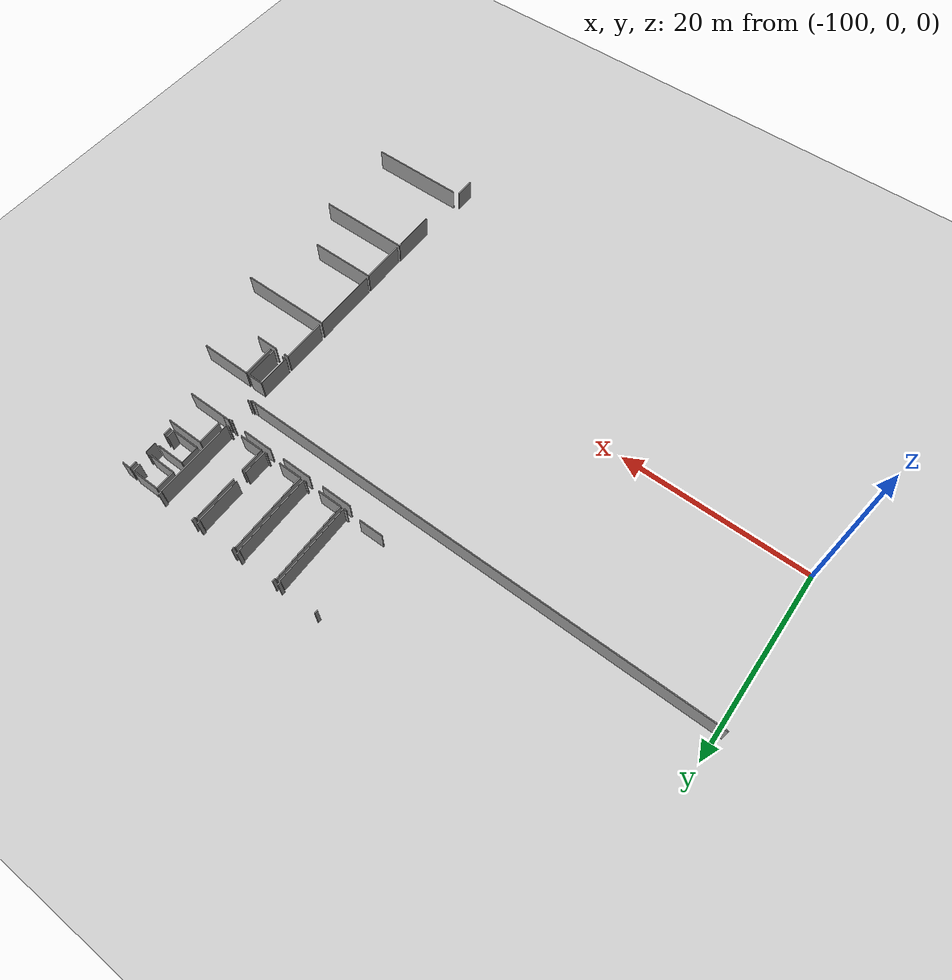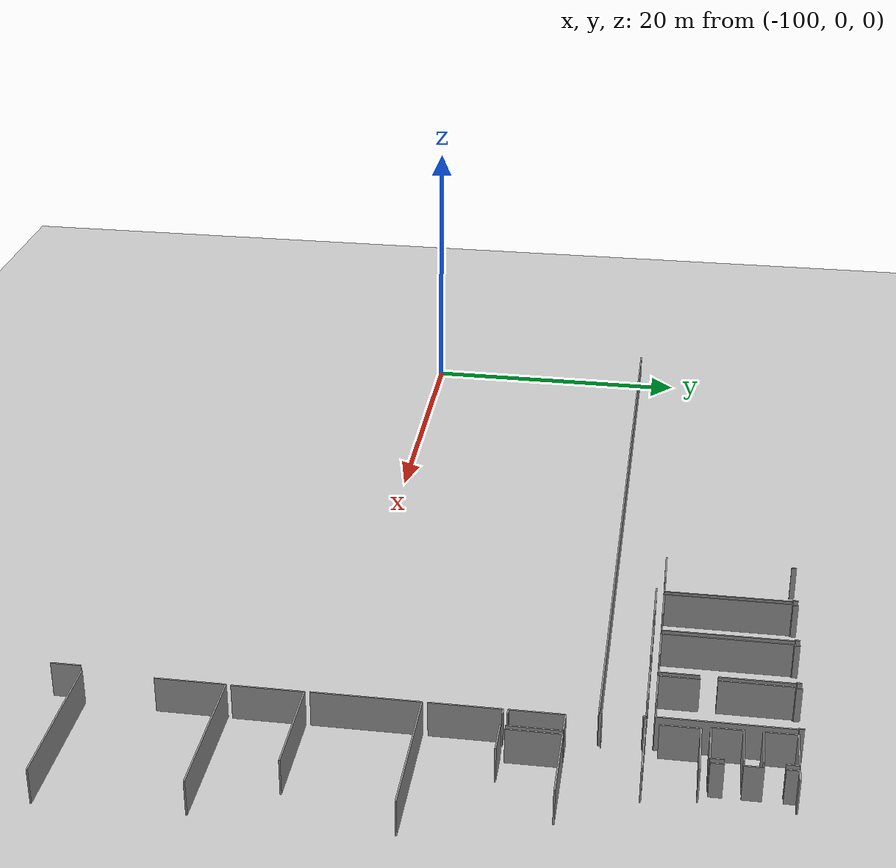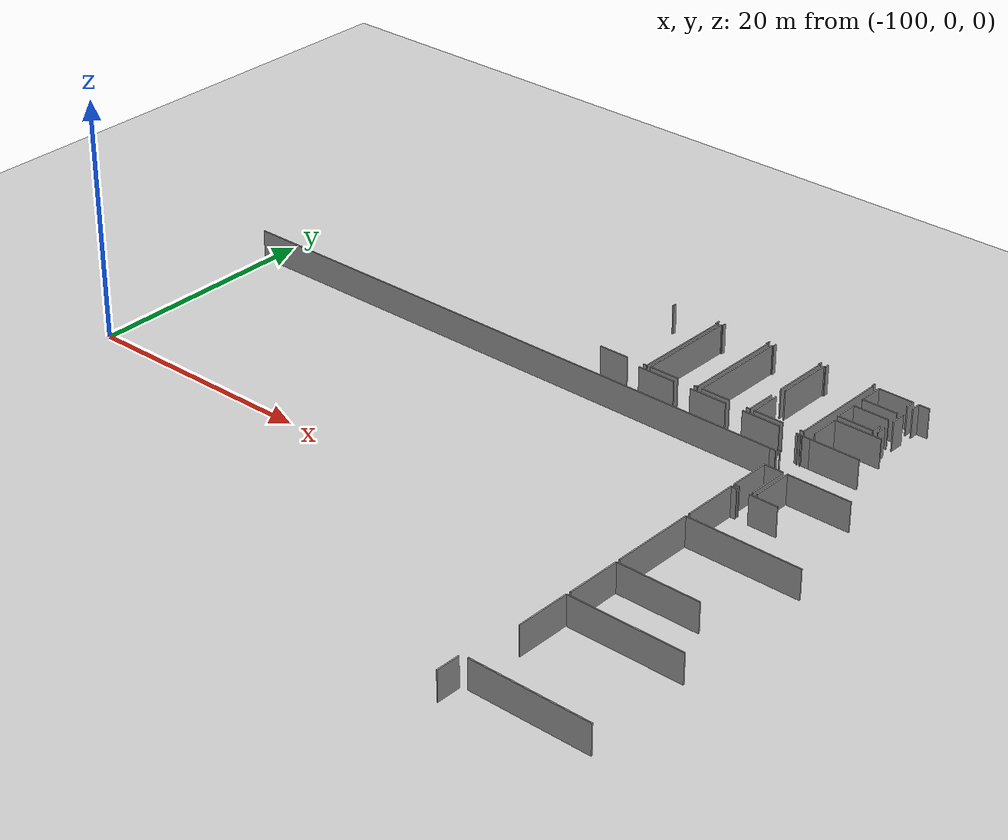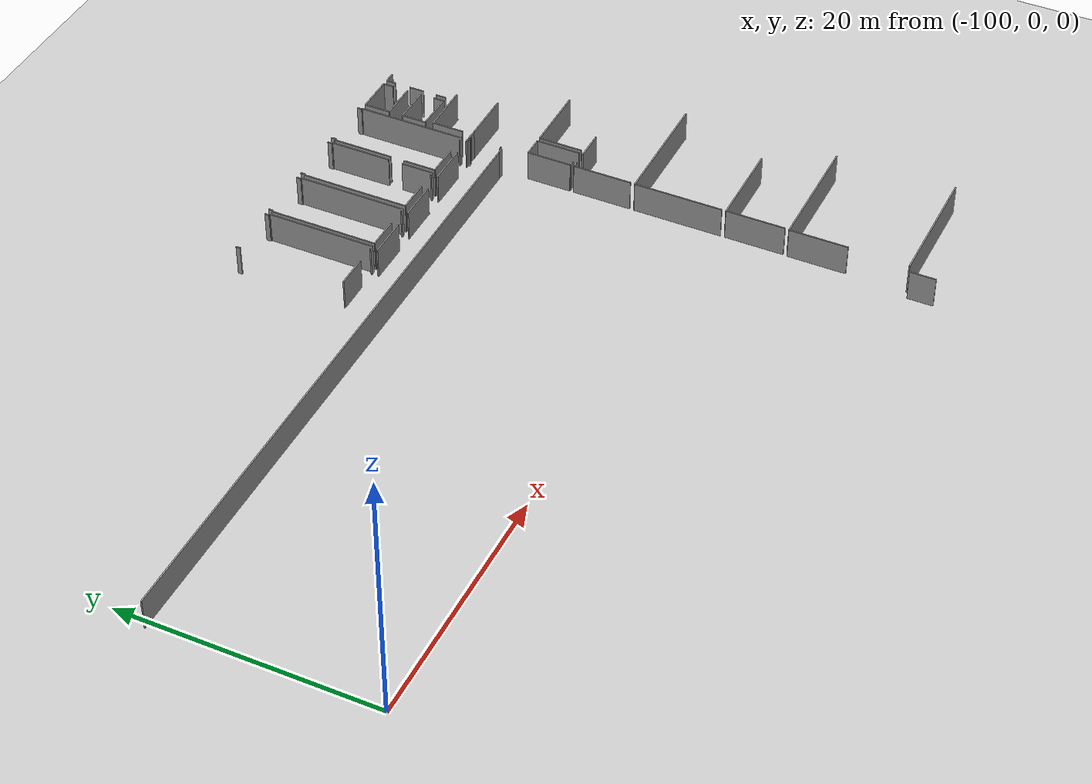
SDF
<sdf version="1.6">
 <world name="default">
  <model name="ground_plane">
   <static>1</static>
   <link name="link">
    <collision name="collision">
     <geometry><plane><normal>0 0 1</normal><size>100 100</size></plane></geometry>
     <surface><friction><ode><mu>100</mu><mu2>50</mu2></ode></friction></surface>
    </collision>
    <visual name="visual">
     <cast_shadows>0</cast_shadows>
     <geometry><plane><normal>0 0 1</normal><size>100 100</size></plane></geometry>
     <material>
      <script><uri>file://media/materials/scripts/gazebo.material</uri><name>Gazebo/Grey</name></script>
     </material>
    </visual>
   </link>
  </model>
  <model name="50010536_PLAN3">
   <static>1</static>
   <link name="Wall_53">
    <collision name="Wall_53_Collision">
     <geometry><box><size>0.346684442751 0.1 2.5</size></box></geometry>
     <pose>0.173342221376 0 1.25 0 0 0</pose>
    </collision>
    <visual name="Wall_53_Visual">
     <pose>0.173342221376 0 1.25 0 0 0</pose>
     <geometry><box><size>0.346684442751 0.1 2.5</size></box></geometry>
     <material>
      <script><uri>file://media/materials/scripts/gazebo.material</uri><name>Gazebo/Grey</name></script>
      <ambient>1 1 1 1</ambient>
     </material>
    </visual>
    <pose>34.9866361934 -0.379697171698 0 0 0 1.57079632679</pose>
   </link>
   <link name="Wall_54">
    <collision name="Wall_54_Collision">
     <geometry><box><size>0.354937624988 0.1 2.5</size></box></geometry>
     <pose>0.177468812494 0 1.25 0 0 0</pose>
    </collision>
    <visual name="Wall_54_Visual">
     <pose>0.177468812494 0 1.25 0 0 0</pose>
     <geometry><box><size>0.354937624988 0.1 2.5</size></box></geometry>
     <material>
      <script><uri>file://media/materials/scripts/gazebo.material</uri><name>Gazebo/Grey</name></script>
      <ambient>1 1 1 1</ambient>
     </material>
    </visual>
    <pose>39.1840777069 -0.0330127289464 0 0 0 -1.57079632679</pose>
   </link>
   <link name="Wall_55">
    <collision name="Wall_55_Collision">
     <geometry><box><size>0.127987810685 0.1 2.5</size></box></geometry>
     <pose>0.0639939053424 0 1.25 0 0 0</pose>
    </collision>
    <visual name="Wall_55_Visual">
     <pose>0.0639939053424 0 1.25 0 0 0</pose>
     <geometry><box><size>0.127987810685 0.1 2.5</size></box></geometry>
     <material>
      <script><uri>file://media/materials/scripts/gazebo.material</uri><name>Gazebo/Grey</name></script>
      <ambient>1 1 1 1</ambient>
     </material>
    </visual>
    <pose>39.1840777069 -0.387950353935 0 0 0 0.0</pose>
   </link>
   <link name="Wall_56">
    <collision name="Wall_56_Collision">
     <geometry><box><size>8.58902326763 0.1 2.5</size></box></geometry>
     <pose>4.29451163381 0 1.25 0 0 0</pose>
    </collision>
    <visual name="Wall_56_Visual">
     <pose>4.29451163381 0 1.25 0 0 0</pose>
     <geometry><box><size>8.58902326763 0.1 2.5</size></box></geometry>
     <material>
      <script><uri>file://media/materials/scripts/gazebo.material</uri><name>Gazebo/Grey</name></script>
      <ambient>1 1 1 1</ambient>
     </material>
    </visual>
    <pose>39.3120655176 -0.387950353935 0 0 0 -1.57079632679</pose>
   </link>
   <link name="Wall_57">
    <collision name="Wall_57_Collision">
     <geometry><box><size>0.342570548837 0.1 2.5</size></box></geometry>
     <pose>0.171285274418 0 1.25 0 0 0</pose>
    </collision>
    <visual name="Wall_57_Visual">
     <pose>0.171285274418 0 1.25 0 0 0</pose>
     <geometry><box><size>0.342570548837 0.1 2.5</size></box></geometry>
     <material>
      <script><uri>file://media/materials/scripts/gazebo.material</uri><name>Gazebo/Grey</name></script>
      <ambient>1 1 1 1</ambient>
     </material>
    </visual>
    <pose>39.3120655176 -8.97697362156 0 0 0 3.14159265359</pose>
   </link>
   <link name="Wall_58">
    <collision name="Wall_58_Collision">
     <geometry><box><size>2.59487039224 0.1 2.5</size></box></geometry>
     <pose>1.29743519612 0 1.25 0 0 0</pose>
    </collision>
    <visual name="Wall_58_Visual">
     <pose>1.29743519612 0 1.25 0 0 0</pose>
     <geometry><box><size>2.59487039224 0.1 2.5</size></box></geometry>
     <material>
      <script><uri>file://media/materials/scripts/gazebo.material</uri><name>Gazebo/Grey</name></script>
      <ambient>1 1 1 1</ambient>
     </material>
    </visual>
    <pose>37.4628448084 -8.97697362156 0 0 0 -3.13425279714</pose>
   </link>
   <link name="Wall_59">
    <collision name="Wall_59_Collision">
     <geometry><box><size>8.59250230137 0.1 2.5</size></box></geometry>
     <pose>4.29625115068 0 1.25 0 0 0</pose>
    </collision>
    <visual name="Wall_59_Visual">
     <pose>4.29625115068 0 1.25 0 0 0</pose>
     <geometry><box><size>8.59250230137 0.1 2.5</size></box></geometry>
     <material>
      <script><uri>file://media/materials/scripts/gazebo.material</uri><name>Gazebo/Grey</name></script>
      <ambient>1 1 1 1</ambient>
     </material>
    </visual>
    <pose>39.6599688919 -8.97798939784 0 0 0 1.57079632679</pose>
   </link>
   <link name="Wall_60">
    <collision name="Wall_60_Collision">
     <geometry><box><size>0.124940481859 0.1 2.5</size></box></geometry>
     <pose>0.0624702409294 0 1.25 0 0 0</pose>
    </collision>
    <visual name="Wall_60_Visual">
     <pose>0.0624702409294 0 1.25 0 0 0</pose>
     <geometry><box><size>0.124940481859 0.1 2.5</size></box></geometry>
     <material>
      <script><uri>file://media/materials/scripts/gazebo.material</uri><name>Gazebo/Grey</name></script>
      <ambient>1 1 1 1</ambient>
     </material>
    </visual>
    <pose>39.6599688919 -0.385487096467 0 0 0 0.0</pose>
   </link>
   <link name="Wall_61">
    <collision name="Wall_61_Collision">
     <geometry><box><size>0.365476303844 0.1 2.5</size></box></geometry>
     <pose>0.182738151922 0 1.25 0 0 0</pose>
    </collision>
    <visual name="Wall_61_Visual">
     <pose>0.182738151922 0 1.25 0 0 0</pose>
     <geometry><box><size>0.365476303844 0.1 2.5</size></box></geometry>
     <material>
      <script><uri>file://media/materials/scripts/gazebo.material</uri><name>Gazebo/Grey</name></script>
      <ambient>1 1 1 1</ambient>
     </material>
    </visual>
    <pose>39.7849093737 -0.385487096467 0 0 0 1.57079632679</pose>
   </link>
   <link name="Wall_62">
    <collision name="Wall_62_Collision">
     <geometry><box><size>0.359686379075 0.1 2.5</size></box></geometry>
     <pose>0.179843189538 0 1.25 0 0 0</pose>
    </collision>
    <visual name="Wall_62_Visual">
     <pose>0.179843189538 0 1.25 0 0 0</pose>
     <geometry><box><size>0.359686379075 0.1 2.5</size></box></geometry>
     <material>
      <script><uri>file://media/materials/scripts/gazebo.material</uri><name>Gazebo/Grey</name></script>
      <ambient>1 1 1 1</ambient>
     </material>
    </visual>
    <pose>43.9881916008 -0.0200107926229 0 0 0 -1.57079632679</pose>
   </link>
   <link name="Wall_63">
    <collision name="Wall_63_Collision">
     <geometry><box><size>0.0909119766372 0.1 2.5</size></box></geometry>
     <pose>0.0454559883186 0 1.25 0 0 0</pose>
    </collision>
    <visual name="Wall_63_Visual">
     <pose>0.0454559883186 0 1.25 0 0 0</pose>
     <geometry><box><size>0.0909119766372 0.1 2.5</size></box></geometry>
     <material>
      <script><uri>file://media/materials/scripts/gazebo.material</uri><name>Gazebo/Grey</name></script>
      <ambient>1 1 1 1</ambient>
     </material>
    </visual>
    <pose>43.9881916008 -0.379697171698 0 0 0 0.0</pose>
   </link>
   <link name="Wall_64">
    <collision name="Wall_64_Collision">
     <geometry><box><size>8.59829222614 0.1 2.5</size></box></geometry>
     <pose>4.29914611307 0 1.25 0 0 0</pose>
    </collision>
    <visual name="Wall_64_Visual">
     <pose>4.29914611307 0 1.25 0 0 0</pose>
     <geometry><box><size>8.59829222614 0.1 2.5</size></box></geometry>
     <material>
      <script><uri>file://media/materials/scripts/gazebo.material</uri><name>Gazebo/Grey</name></script>
      <ambient>1 1 1 1</ambient>
     </material>
    </visual>
    <pose>44.0791035774 -0.379697171698 0 0 0 -1.57079632679</pose>
   </link>
   <link name="Wall_65">
    <collision name="Wall_65_Collision">
     <geometry><box><size>0.288226518109 0.1 2.5</size></box></geometry>
     <pose>0.144113259055 0 1.25 0 0 0</pose>
    </collision>
    <visual name="Wall_65_Visual">
     <pose>0.144113259055 0 1.25 0 0 0</pose>
     <geometry><box><size>0.288226518109 0.1 2.5</size></box></geometry>
     <material>
      <script><uri>file://media/materials/scripts/gazebo.material</uri><name>Gazebo/Grey</name></script>
      <ambient>1 1 1 1</ambient>
     </material>
    </visual>
    <pose>44.0791035774 -8.97798939784 0 0 0 3.14159265359</pose>
   </link>
   <link name="Wall_66">
    <collision name="Wall_66_Collision">
     <geometry><box><size>2.58845189347 0.1 2.5</size></box></geometry>
     <pose>1.29422594674 0 1.25 0 0 0</pose>
    </collision>
    <visual name="Wall_66_Visual">
     <pose>1.29422594674 0 1.25 0 0 0</pose>
     <geometry><box><size>2.58845189347 0.1 2.5</size></box></geometry>
     <material>
      <script><uri>file://media/materials/scripts/gazebo.material</uri><name>Gazebo/Grey</name></script>
      <ambient>1 1 1 1</ambient>
     </material>
    </visual>
    <pose>42.2484207853 -8.97798939784 0 0 0 3.14159265359</pose>
   </link>
   <link name="Wall_67">
    <collision name="Wall_67_Collision">
     <geometry><box><size>8.58960733898 0.1 2.5</size></box></geometry>
     <pose>4.29480366949 0 1.25 0 0 0</pose>
    </collision>
    <visual name="Wall_67_Visual">
     <pose>4.29480366949 0 1.25 0 0 0</pose>
     <geometry><box><size>8.58960733898 0.1 2.5</size></box></geometry>
     <material>
      <script><uri>file://media/materials/scripts/gazebo.material</uri><name>Gazebo/Grey</name></script>
      <ambient>1 1 1 1</ambient>
     </material>
    </visual>
    <pose>44.4965876266 -8.98459194362 0 0 0 1.57079632679</pose>
   </link>
   <link name="Wall_68">
    <collision name="Wall_68_Collision">
     <geometry><box><size>0.110719614005 0.1 2.5</size></box></geometry>
     <pose>0.0553598070025 0 1.25 0 0 0</pose>
    </collision>
    <visual name="Wall_68_Visual">
     <pose>0.0553598070025 0 1.25 0 0 0</pose>
     <geometry><box><size>0.110719614005 0.1 2.5</size></box></geometry>
     <material>
      <script><uri>file://media/materials/scripts/gazebo.material</uri><name>Gazebo/Grey</name></script>
      <ambient>1 1 1 1</ambient>
     </material>
    </visual>
    <pose>44.4965876266 -0.394984604641 0 0 0 0.0</pose>
   </link>
   <link name="Wall_69">
    <collision name="Wall_69_Collision">
     <geometry><box><size>0.360727549757 0.1 2.5</size></box></geometry>
     <pose>0.180363774879 0 1.25 0 0 0</pose>
    </collision>
    <visual name="Wall_69_Visual">
     <pose>0.180363774879 0 1.25 0 0 0</pose>
     <geometry><box><size>0.360727549757 0.1 2.5</size></box></geometry>
     <material>
      <script><uri>file://media/materials/scripts/gazebo.material</uri><name>Gazebo/Grey</name></script>
      <ambient>1 1 1 1</ambient>
     </material>
    </visual>
    <pose>44.6073072406 -0.394984604641 0 0 0 1.57079632679</pose>
   </link>
   <link name="Wall_70">
    <collision name="Wall_70_Collision">
     <geometry><box><size>0.353642510237 0.1 2.5</size></box></geometry>
     <pose>0.176821255119 0 1.25 0 0 0</pose>
    </collision>
    <visual name="Wall_70_Visual">
     <pose>0.176821255119 0 1.25 0 0 0</pose>
     <geometry><box><size>0.353642510237 0.1 2.5</size></box></geometry>
     <material>
      <script><uri>file://media/materials/scripts/gazebo.material</uri><name>Gazebo/Grey</name></script>
      <ambient>1 1 1 1</ambient>
     </material>
    </visual>
    <pose>48.8055105863 -0.0342570548837 0 0 0 -1.57079632679</pose>
   </link>
   <link name="Wall_71">
    <collision name="Wall_71_Collision">
     <geometry><box><size>0.0827857664349 0.1 2.5</size></box></geometry>
     <pose>0.0413928832175 0 1.25 0 0 0</pose>
    </collision>
    <visual name="Wall_71_Visual">
     <pose>0.0413928832175 0 1.25 0 0 0</pose>
     <geometry><box><size>0.0827857664349 0.1 2.5</size></box></geometry>
     <material>
      <script><uri>file://media/materials/scripts/gazebo.material</uri><name>Gazebo/Grey</name></script>
      <ambient>1 1 1 1</ambient>
     </material>
    </visual>
    <pose>48.8055105863 -0.387899565121 0 0 0 0.0</pose>
   </link>
   <link name="Wall_72">
    <collision name="Wall_72_Collision">
     <geometry><box><size>4.86201314161 0.1 2.5</size></box></geometry>
     <pose>2.4310065708 0 1.25 0 0 0</pose>
    </collision>
    <visual name="Wall_72_Visual">
     <pose>2.4310065708 0 1.25 0 0 0</pose>
     <geometry><box><size>4.86201314161 0.1 2.5</size></box></geometry>
     <material>
      <script><uri>file://media/materials/scripts/gazebo.material</uri><name>Gazebo/Grey</name></script>
      <ambient>1 1 1 1</ambient>
     </material>
    </visual>
    <pose>48.8882963527 -0.387899565121 0 0 0 -1.57079632679</pose>
   </link>
   <link name="Wall_73">
    <collision name="Wall_73_Collision">
     <geometry><box><size>2.59530838333 0.1 2.5</size></box></geometry>
     <pose>1.29765419166 0 1.25 0 0 0</pose>
    </collision>
    <visual name="Wall_73_Visual">
     <pose>1.29765419166 0 1.25 0 0 0</pose>
     <geometry><box><size>2.59530838333 0.1 2.5</size></box></geometry>
     <material>
      <script><uri>file://media/materials/scripts/gazebo.material</uri><name>Gazebo/Grey</name></script>
      <ambient>1 1 1 1</ambient>
     </material>
    </visual>
    <pose>48.8882963527 -6.38572834333 0 0 0 -1.57079632679</pose>
   </link>
   <link name="Wall_74">
    <collision name="Wall_74_Collision">
     <geometry><box><size>0.302193441894 0.1 2.5</size></box></geometry>
     <pose>0.151096720947 0 1.25 0 0 0</pose>
    </collision>
    <visual name="Wall_74_Visual">
     <pose>0.151096720947 0 1.25 0 0 0</pose>
     <geometry><box><size>0.302193441894 0.1 2.5</size></box></geometry>
     <material>
      <script><uri>file://media/materials/scripts/gazebo.material</uri><name>Gazebo/Grey</name></script>
      <ambient>1 1 1 1</ambient>
     </material>
    </visual>
    <pose>48.8882963527 -8.98103672666 0 0 0 3.14159265359</pose>
   </link>
   <link name="Wall_75">
    <collision name="Wall_75_Collision">
     <geometry><box><size>2.53614190718 0.1 2.5</size></box></geometry>
     <pose>1.26807095359 0 1.25 0 0 0</pose>
    </collision>
    <visual name="Wall_75_Visual">
     <pose>1.26807095359 0 1.25 0 0 0</pose>
     <geometry><box><size>2.53614190718 0.1 2.5</size></box></geometry>
     <material>
      <script><uri>file://media/materials/scripts/gazebo.material</uri><name>Gazebo/Grey</name></script>
      <ambient>1 1 1 1</ambient>
     </material>
    </visual>
    <pose>47.0327270419 -8.98103672666 0 0 0 -3.14019083214</pose>
   </link>
   <link name="Wall_76">
    <collision name="Wall_76_Collision">
     <geometry><box><size>2.64076437165 0.1 2.5</size></box></geometry>
     <pose>1.32038218582 0 1.25 0 0 0</pose>
    </collision>
    <visual name="Wall_76_Visual">
     <pose>1.32038218582 0 1.25 0 0 0</pose>
     <geometry><box><size>2.64076437165 0.1 2.5</size></box></geometry>
     <material>
      <script><uri>file://media/materials/scripts/gazebo.material</uri><name>Gazebo/Grey</name></script>
      <ambient>1 1 1 1</ambient>
     </material>
    </visual>
    <pose>49.2684506238 -8.98535377583 0 0 0 1.57079632679</pose>
   </link>
   <link name="Wall_77">
    <collision name="Wall_77_Collision">
     <geometry><box><size>4.84517664984 0.1 2.5</size></box></geometry>
     <pose>2.42258832492 0 1.25 0 0 0</pose>
    </collision>
    <visual name="Wall_77_Visual">
     <pose>2.42258832492 0 1.25 0 0 0</pose>
     <geometry><box><size>4.84517664984 0.1 2.5</size></box></geometry>
     <material>
      <script><uri>file://media/materials/scripts/gazebo.material</uri><name>Gazebo/Grey</name></script>
      <ambient>1 1 1 1</ambient>
     </material>
    </visual>
    <pose>49.2684506238 -5.24140558042 0 0 0 1.57079632679</pose>
   </link>
   <link name="Wall_78">
    <collision name="Wall_78_Collision">
     <geometry><box><size>0.142970510745 0.1 2.5</size></box></geometry>
     <pose>0.0714852553725 0 1.25 0 0 0</pose>
    </collision>
    <visual name="Wall_78_Visual">
     <pose>0.0714852553725 0 1.25 0 0 0</pose>
     <geometry><box><size>0.142970510745 0.1 2.5</size></box></geometry>
     <material>
      <script><uri>file://media/materials/scripts/gazebo.material</uri><name>Gazebo/Grey</name></script>
      <ambient>1 1 1 1</ambient>
     </material>
    </visual>
    <pose>49.2684506238 -0.396228930578 0 0 0 0.0</pose>
   </link>
   <link name="Wall_79">
    <collision name="Wall_79_Collision">
     <geometry><box><size>0.396228930578 0.1 2.5</size></box></geometry>
     <pose>0.198114465289 0 1.25 0 0 0</pose>
    </collision>
    <visual name="Wall_79_Visual">
     <pose>0.198114465289 0 1.25 0 0 0</pose>
     <geometry><box><size>0.396228930578 0.1 2.5</size></box></geometry>
     <material>
      <script><uri>file://media/materials/scripts/gazebo.material</uri><name>Gazebo/Grey</name></script>
      <ambient>1 1 1 1</ambient>
     </material>
    </visual>
    <pose>49.4114211345 -0.396228930578 0 0 0 1.57079632679</pose>
   </link>
   <link name="Wall_80">
    <collision name="Wall_80_Collision">
     <geometry><box><size>0.371621750309 0.1 2.5</size></box></geometry>
     <pose>0.185810875155 0 1.25 0 0 0</pose>
    </collision>
    <visual name="Wall_80_Visual">
     <pose>0.185810875155 0 1.25 0 0 0</pose>
     <geometry><box><size>0.371621750309 0.1 2.5</size></box></geometry>
     <material>
      <script><uri>file://media/materials/scripts/gazebo.material</uri><name>Gazebo/Grey</name></script>
      <ambient>1 1 1 1</ambient>
     </material>
    </visual>
    <pose>53.6065771514 -0.0 0 0 0 -1.57079632679</pose>
   </link>
   <link name="Wall_81">
    <collision name="Wall_81_Collision">
     <geometry><box><size>0.0718661714757 0.1 2.5</size></box></geometry>
     <pose>0.0359330857379 0 1.25 0 0 0</pose>
    </collision>
    <visual name="Wall_81_Visual">
     <pose>0.0359330857379 0 1.25 0 0 0</pose>
     <geometry><box><size>0.0718661714757 0.1 2.5</size></box></geometry>
     <material>
      <script><uri>file://media/materials/scripts/gazebo.material</uri><name>Gazebo/Grey</name></script>
      <ambient>1 1 1 1</ambient>
     </material>
    </visual>
    <pose>53.6065771514 -0.371621750309 0 0 0 0.0</pose>
   </link>
   <link name="Wall_82">
    <collision name="Wall_82_Collision">
     <geometry><box><size>8.60789131194 0.1 2.5</size></box></geometry>
     <pose>4.30394565597 0 1.25 0 0 0</pose>
    </collision>
    <visual name="Wall_82_Visual">
     <pose>4.30394565597 0 1.25 0 0 0</pose>
     <geometry><box><size>8.60789131194 0.1 2.5</size></box></geometry>
     <material>
      <script><uri>file://media/materials/scripts/gazebo.material</uri><name>Gazebo/Grey</name></script>
      <ambient>1 1 1 1</ambient>
     </material>
    </visual>
    <pose>53.6784433229 -0.371621750309 0 0 0 -1.57079632679</pose>
   </link>
   <link name="Wall_83">
    <collision name="Wall_83_Collision">
     <geometry><box><size>0.323016855538 0.1 2.5</size></box></geometry>
     <pose>0.161508427769 0 1.25 0 0 0</pose>
    </collision>
    <visual name="Wall_83_Visual">
     <pose>0.161508427769 0 1.25 0 0 0</pose>
     <geometry><box><size>0.323016855538 0.1 2.5</size></box></geometry>
     <material>
      <script><uri>file://media/materials/scripts/gazebo.material</uri><name>Gazebo/Grey</name></script>
      <ambient>1 1 1 1</ambient>
     </material>
    </visual>
    <pose>53.6784433229 -8.97951306225 0 0 0 3.14159265359</pose>
   </link>
   <link name="Wall_84">
    <collision name="Wall_84_Collision">
     <geometry><box><size>2.57601525556 0.1 2.5</size></box></geometry>
     <pose>1.28800762778 0 1.25 0 0 0</pose>
    </collision>
    <visual name="Wall_84_Visual">
     <pose>1.28800762778 0 1.25 0 0 0</pose>
     <geometry><box><size>2.57601525556 0.1 2.5</size></box></geometry>
     <material>
      <script><uri>file://media/materials/scripts/gazebo.material</uri><name>Gazebo/Grey</name></script>
      <ambient>1 1 1 1</ambient>
     </material>
    </visual>
    <pose>51.8444592578 -8.97951306225 0 0 0 -3.13932530732</pose>
   </link>
   <link name="Wall_97">
    <collision name="Wall_97_Collision">
     <geometry><box><size>3.28349680983 0.1 2.5</size></box></geometry>
     <pose>1.64174840491 0 1.25 0 0 0</pose>
    </collision>
    <visual name="Wall_97_Visual">
     <pose>1.64174840491 0 1.25 0 0 0</pose>
     <geometry><box><size>3.28349680983 0.1 2.5</size></box></geometry>
     <material>
      <script><uri>file://media/materials/scripts/gazebo.material</uri><name>Gazebo/Grey</name></script>
      <ambient>1 1 1 1</ambient>
     </material>
    </visual>
    <pose>39.0159667333 -9.52854013903 0 0 0 0.0</pose>
   </link>
   <link name="Wall_98">
    <collision name="Wall_98_Collision">
     <geometry><box><size>3.24819858426 0.1 2.5</size></box></geometry>
     <pose>1.62409929213 0 1.25 0 0 0</pose>
    </collision>
    <visual name="Wall_98_Visual">
     <pose>1.62409929213 0 1.25 0 0 0</pose>
     <geometry><box><size>3.24819858426 0.1 2.5</size></box></geometry>
     <material>
      <script><uri>file://media/materials/scripts/gazebo.material</uri><name>Gazebo/Grey</name></script>
      <ambient>1 1 1 1</ambient>
     </material>
    </visual>
    <pose>43.8368409358 -9.52854013903 0 0 0 0.0</pose>
   </link>
   <link name="Wall_99">
    <collision name="Wall_99_Collision">
     <geometry><box><size>3.30838332857 0.1 2.5</size></box></geometry>
     <pose>1.65419166429 0 1.25 0 0 0</pose>
    </collision>
    <visual name="Wall_99_Visual">
     <pose>1.65419166429 0 1.25 0 0 0</pose>
     <geometry><box><size>3.30838332857 0.1 2.5</size></box></geometry>
     <material>
      <script><uri>file://media/materials/scripts/gazebo.material</uri><name>Gazebo/Grey</name></script>
      <ambient>1 1 1 1</ambient>
     </material>
    </visual>
    <pose>48.6208932483 -9.52854013903 0 0 0 0.0</pose>
   </link>
   <link name="Wall_100">
    <collision name="Wall_100_Collision">
     <geometry><box><size>0.313620924991 0.1 2.5</size></box></geometry>
     <pose>0.156810462496 0 1.25 0 0 0</pose>
    </collision>
    <visual name="Wall_100_Visual">
     <pose>0.156810462496 0 1.25 0 0 0</pose>
     <geometry><box><size>0.313620924991 0.1 2.5</size></box></geometry>
     <material>
      <script><uri>file://media/materials/scripts/gazebo.material</uri><name>Gazebo/Grey</name></script>
      <ambient>1 1 1 1</ambient>
     </material>
    </visual>
    <pose>53.3942799098 -9.52854013903 0 0 0 0.0</pose>
   </link>
   <link name="Wall_101">
    <collision name="Wall_101_Collision">
     <geometry><box><size>0.195282988922 0.1 2.5</size></box></geometry>
     <pose>0.0976414944608 0 1.25 0 0 0</pose>
    </collision>
    <visual name="Wall_101_Visual">
     <pose>0.0976414944608 0 1.25 0 0 0</pose>
     <geometry><box><size>0.195282988922 0.1 2.5</size></box></geometry>
     <material>
      <script><uri>file://media/materials/scripts/gazebo.material</uri><name>Gazebo/Grey</name></script>
      <ambient>1 1 1 1</ambient>
     </material>
    </visual>
    <pose>53.7079008348 -9.52854013903 0 0 0 -1.57079632679</pose>
   </link>
   <link name="Wall_102">
    <collision name="Wall_102_Collision">
     <geometry><box><size>0.169380693902 0.1 2.5</size></box></geometry>
     <pose>0.0846903469511 0 1.25 0 0 0</pose>
    </collision>
    <visual name="Wall_102_Visual">
     <pose>0.0846903469511 0 1.25 0 0 0</pose>
     <geometry><box><size>0.169380693902 0.1 2.5</size></box></geometry>
     <material>
      <script><uri>file://media/materials/scripts/gazebo.material</uri><name>Gazebo/Grey</name></script>
      <ambient>1 1 1 1</ambient>
     </material>
    </visual>
    <pose>53.7079008348 -12.2272037584 0 0 0 -1.57079632679</pose>
   </link>
   <link name="Wall_103">
    <collision name="Wall_103_Collision">
     <geometry><box><size>0.478176681586 0.1 2.5</size></box></geometry>
     <pose>0.239088340793 0 1.25 0 0 0</pose>
    </collision>
    <visual name="Wall_103_Visual">
     <pose>0.239088340793 0 1.25 0 0 0</pose>
     <geometry><box><size>0.478176681586 0.1 2.5</size></box></geometry>
     <material>
      <script><uri>file://media/materials/scripts/gazebo.material</uri><name>Gazebo/Grey</name></script>
      <ambient>1 1 1 1</ambient>
     </material>
    </visual>
    <pose>53.7079008348 -12.3965844523 0 0 0 3.14159265359</pose>
   </link>
   <link name="Wall_104">
    <collision name="Wall_104_Collision">
     <geometry><box><size>51.2421039266 0.1 2.5</size></box></geometry>
     <pose>25.6210519633 0 1.25 0 0 0</pose>
    </collision>
    <visual name="Wall_104_Visual">
     <pose>25.6210519633 0 1.25 0 0 0</pose>
     <geometry><box><size>51.2421039266 0.1 2.5</size></box></geometry>
     <material>
      <script><uri>file://media/materials/scripts/gazebo.material</uri><name>Gazebo/Grey</name></script>
      <ambient>1 1 1 1</ambient>
     </material>
    </visual>
    <pose>53.2297241533 -12.3965844523 0 0 0 3.14159265359</pose>
   </link>
   <link name="Wall_171">
    <collision name="Wall_171_Collision">
     <geometry><box><size>2.01580801828 0.1 2.5</size></box></geometry>
     <pose>1.00790400914 0 1.25 0 0 0</pose>
    </collision>
    <visual name="Wall_171_Visual">
     <pose>1.00790400914 0 1.25 0 0 0</pose>
     <geometry><box><size>2.01580801828 0.1 2.5</size></box></geometry>
     <material>
      <script><uri>file://media/materials/scripts/gazebo.material</uri><name>Gazebo/Grey</name></script>
      <ambient>1 1 1 1</ambient>
     </material>
    </visual>
    <pose>53.5428371901 -45.3412563883 0 0 0 -1.57079632679</pose>
   </link>
   <link name="Wall_184">
    <collision name="Wall_184_Collision">
     <geometry><box><size>2.07827825921 0.1 2.5</size></box></geometry>
     <pose>1.03913912961 0 1.25 0 0 0</pose>
    </collision>
    <visual name="Wall_184_Visual">
     <pose>1.03913912961 0 1.25 0 0 0</pose>
     <geometry><box><size>2.07827825921 0.1 2.5</size></box></geometry>
     <material>
      <script><uri>file://media/materials/scripts/gazebo.material</uri><name>Gazebo/Grey</name></script>
      <ambient>1 1 1 1</ambient>
     </material>
    </visual>
    <pose>54.2188363013 -2.45490270768 0 0 0 1.57079632679</pose>
   </link>
   <link name="Wall_185">
    <collision name="Wall_185_Collision">
     <geometry><box><size>3.01406215281 0.1 2.5</size></box></geometry>
     <pose>1.50703107641 0 1.25 0 0 0</pose>
    </collision>
    <visual name="Wall_185_Visual">
     <pose>1.50703107641 0 1.25 0 0 0</pose>
     <geometry><box><size>3.01406215281 0.1 2.5</size></box></geometry>
     <material>
      <script><uri>file://media/materials/scripts/gazebo.material</uri><name>Gazebo/Grey</name></script>
      <ambient>1 1 1 1</ambient>
     </material>
    </visual>
    <pose>54.2188363013 -0.376624448465 0 0 0 0.0</pose>
   </link>
   <link name="Wall_186">
    <collision name="Wall_186_Collision">
     <geometry><box><size>0.816023870742 0.1 2.5</size></box></geometry>
     <pose>0.408011935371 0 1.25 0 0 0</pose>
    </collision>
    <visual name="Wall_186_Visual">
     <pose>0.408011935371 0 1.25 0 0 0</pose>
     <geometry><box><size>0.816023870742 0.1 2.5</size></box></geometry>
     <material>
      <script><uri>file://media/materials/scripts/gazebo.material</uri><name>Gazebo/Grey</name></script>
      <ambient>1 1 1 1</ambient>
     </material>
    </visual>
    <pose>57.2328984541 -0.376624448465 0 0 0 -1.57079632679</pose>
   </link>
   <link name="Wall_187">
    <collision name="Wall_187_Collision">
     <geometry><box><size>3.01411730197 0.1 2.5</size></box></geometry>
     <pose>1.50705865098 0 1.25 0 0 0</pose>
    </collision>
    <visual name="Wall_187_Visual">
     <pose>1.50705865098 0 1.25 0 0 0</pose>
     <geometry><box><size>3.01411730197 0.1 2.5</size></box></geometry>
     <material>
      <script><uri>file://media/materials/scripts/gazebo.material</uri><name>Gazebo/Grey</name></script>
      <ambient>1 1 1 1</ambient>
     </material>
    </visual>
    <pose>57.2328984541 -2.47313589182 0 0 0 3.13554335507</pose>
   </link>
   <link name="Wall_188">
    <collision name="Wall_188_Collision">
     <geometry><box><size>1.97339935879 0.1 2.5</size></box></geometry>
     <pose>0.986699679396 0 1.25 0 0 0</pose>
    </collision>
    <visual name="Wall_188_Visual">
     <pose>0.986699679396 0 1.25 0 0 0</pose>
     <geometry><box><size>1.97339935879 0.1 2.5</size></box></geometry>
     <material>
      <script><uri>file://media/materials/scripts/gazebo.material</uri><name>Gazebo/Grey</name></script>
      <ambient>1 1 1 1</ambient>
     </material>
    </visual>
    <pose>54.2419452116 -5.59715582643 0 0 0 1.57079632679</pose>
   </link>
   <link name="Wall_189">
    <collision name="Wall_189_Collision">
     <geometry><box><size>3.04174205631 0.1 2.5</size></box></geometry>
     <pose>1.52087102816 0 1.25 0 0 0</pose>
    </collision>
    <visual name="Wall_189_Visual">
     <pose>1.52087102816 0 1.25 0 0 0</pose>
     <geometry><box><size>3.04174205631 0.1 2.5</size></box></geometry>
     <material>
      <script><uri>file://media/materials/scripts/gazebo.material</uri><name>Gazebo/Grey</name></script>
      <ambient>1 1 1 1</ambient>
     </material>
    </visual>
    <pose>54.2419452116 -3.62375646764 0 0 0 0.0</pose>
   </link>
   <link name="Wall_190">
    <collision name="Wall_190_Collision">
     <geometry><box><size>0.844592578485 0.1 2.5</size></box></geometry>
     <pose>0.422296289242 0 1.25 0 0 0</pose>
    </collision>
    <visual name="Wall_190_Visual">
     <pose>0.422296289242 0 1.25 0 0 0</pose>
     <geometry><box><size>0.844592578485 0.1 2.5</size></box></geometry>
     <material>
      <script><uri>file://media/materials/scripts/gazebo.material</uri><name>Gazebo/Grey</name></script>
      <ambient>1 1 1 1</ambient>
     </material>
    </visual>
    <pose>57.2836872679 -4.77092340412 0 0 0 -1.57079632679</pose>
   </link>
   <link name="Wall_191">
    <collision name="Wall_191_Collision">
     <geometry><box><size>3.04179746737 0.1 2.5</size></box></geometry>
     <pose>1.52089873368 0 1.25 0 0 0</pose>
    </collision>
    <visual name="Wall_191_Visual">
     <pose>1.52089873368 0 1.25 0 0 0</pose>
     <geometry><box><size>3.04179746737 0.1 2.5</size></box></geometry>
     <material>
      <script><uri>file://media/materials/scripts/gazebo.material</uri><name>Gazebo/Grey</name></script>
      <ambient>1 1 1 1</ambient>
     </material>
    </visual>
    <pose>57.2836872679 -5.6155159826 0 0 0 3.13555666077</pose>
   </link>
   <link name="Wall_192">
    <collision name="Wall_192_Collision">
     <geometry><box><size>0.844846522553 0.1 2.5</size></box></geometry>
     <pose>0.422423261277 0 1.25 0 0 0</pose>
    </collision>
    <visual name="Wall_192_Visual">
     <pose>0.422423261277 0 1.25 0 0 0</pose>
     <geometry><box><size>0.844846522553 0.1 2.5</size></box></geometry>
     <material>
      <script><uri>file://media/materials/scripts/gazebo.material</uri><name>Gazebo/Grey</name></script>
      <ambient>1 1 1 1</ambient>
     </material>
    </visual>
    <pose>57.712090912 -5.59702885439 0 0 0 1.57079632679</pose>
   </link>
   <link name="Wall_193">
    <collision name="Wall_193_Collision">
     <geometry><box><size>1.21720471066 0.1 2.5</size></box></geometry>
     <pose>0.608602355331 0 1.25 0 0 0</pose>
    </collision>
    <visual name="Wall_193_Visual">
     <pose>0.608602355331 0 1.25 0 0 0</pose>
     <geometry><box><size>1.21720471066 0.1 2.5</size></box></geometry>
     <material>
      <script><uri>file://media/materials/scripts/gazebo.material</uri><name>Gazebo/Grey</name></script>
      <ambient>1 1 1 1</ambient>
     </material>
    </visual>
    <pose>57.712090912 -3.64127860839 0 0 0 1.57079632679</pose>
   </link>
   <link name="Wall_194">
    <collision name="Wall_194_Collision">
     <geometry><box><size>0.783392057899 0.1 2.5</size></box></geometry>
     <pose>0.39169602895 0 1.25 0 0 0</pose>
    </collision>
    <visual name="Wall_194_Visual">
     <pose>0.39169602895 0 1.25 0 0 0</pose>
     <geometry><box><size>0.783392057899 0.1 2.5</size></box></geometry>
     <material>
      <script><uri>file://media/materials/scripts/gazebo.material</uri><name>Gazebo/Grey</name></script>
      <ambient>1 1 1 1</ambient>
     </material>
    </visual>
    <pose>57.712090912 -1.17548170016 0 0 0 1.57079632679</pose>
   </link>
   <link name="Wall_195">
    <collision name="Wall_195_Collision">
     <geometry><box><size>0.932228676634 0.1 2.5</size></box></geometry>
     <pose>0.466114338317 0 1.25 0 0 0</pose>
    </collision>
    <visual name="Wall_195_Visual">
     <pose>0.466114338317 0 1.25 0 0 0</pose>
     <geometry><box><size>0.932228676634 0.1 2.5</size></box></geometry>
     <material>
      <script><uri>file://media/materials/scripts/gazebo.material</uri><name>Gazebo/Grey</name></script>
      <ambient>1 1 1 1</ambient>
     </material>
    </visual>
    <pose>57.712090912 -0.392089642256 0 0 0 0.0</pose>
   </link>
   <link name="Wall_202">
    <collision name="Wall_202_Collision">
     <geometry><box><size>2.51506205758 0.1 2.5</size></box></geometry>
     <pose>1.25753102879 0 1.25 0 0 0</pose>
    </collision>
    <visual name="Wall_202_Visual">
     <pose>1.25753102879 0 1.25 0 0 0</pose>
     <geometry><box><size>2.51506205758 0.1 2.5</size></box></geometry>
     <material>
      <script><uri>file://media/materials/scripts/gazebo.material</uri><name>Gazebo/Grey</name></script>
      <ambient>1 1 1 1</ambient>
     </material>
    </visual>
    <pose>54.4303717106 -8.70449163572 0 0 0 1.57079632679</pose>
   </link>
   <link name="Wall_203">
    <collision name="Wall_203_Collision">
     <geometry><box><size>3.99377837031 0.1 2.5</size></box></geometry>
     <pose>1.99688918516 0 1.25 0 0 0</pose>
    </collision>
    <visual name="Wall_203_Visual">
     <pose>1.99688918516 0 1.25 0 0 0</pose>
     <geometry><box><size>3.99377837031 0.1 2.5</size></box></geometry>
     <material>
      <script><uri>file://media/materials/scripts/gazebo.material</uri><name>Gazebo/Grey</name></script>
      <ambient>1 1 1 1</ambient>
     </material>
    </visual>
    <pose>54.4303717106 -6.18942957814 0 0 0 0.0</pose>
   </link>
   <link name="Wall_207">
    <collision name="Wall_207_Collision">
     <geometry><box><size>4.20988477288 0.1 2.5</size></box></geometry>
     <pose>2.10494238644 0 1.25 0 0 0</pose>
    </collision>
    <visual name="Wall_207_Visual">
     <pose>2.10494238644 0 1.25 0 0 0</pose>
     <geometry><box><size>4.20988477288 0.1 2.5</size></box></geometry>
     <material>
      <script><uri>file://media/materials/scripts/gazebo.material</uri><name>Gazebo/Grey</name></script>
      <ambient>1 1 1 1</ambient>
     </material>
    </visual>
    <pose>54.6551122115 -9.53768212551 0 0 0 0.0</pose>
   </link>
   <link name="Wall_220">
    <collision name="Wall_220_Collision">
     <geometry><box><size>0.0548519188649 0.1 2.5</size></box></geometry>
     <pose>0.0274259594324 0 1.25 0 0 0</pose>
    </collision>
    <visual name="Wall_220_Visual">
     <pose>0.0274259594324 0 1.25 0 0 0</pose>
     <geometry><box><size>0.0548519188649 0.1 2.5</size></box></geometry>
     <material>
      <script><uri>file://media/materials/scripts/gazebo.material</uri><name>Gazebo/Grey</name></script>
      <ambient>1 1 1 1</ambient>
     </material>
    </visual>
    <pose>53.9496555884 -12.2327905279 0 0 0 1.57079632679</pose>
   </link>
   <link name="Wall_221">
    <collision name="Wall_221_Collision">
     <geometry><box><size>0.144494175158 0.1 2.5</size></box></geometry>
     <pose>0.072247087579 0 1.25 0 0 0</pose>
    </collision>
    <visual name="Wall_221_Visual">
     <pose>0.072247087579 0 1.25 0 0 0</pose>
     <geometry><box><size>0.144494175158 0.1 2.5</size></box></geometry>
     <material>
      <script><uri>file://media/materials/scripts/gazebo.material</uri><name>Gazebo/Grey</name></script>
      <ambient>1 1 1 1</ambient>
     </material>
    </visual>
    <pose>53.9496555884 -9.67303431419 0 0 0 1.57079632679</pose>
   </link>
   <link name="Wall_222">
    <collision name="Wall_222_Collision">
     <geometry><box><size>0.705515856026 0.1 2.5</size></box></geometry>
     <pose>0.352757928013 0 1.25 0 0 0</pose>
    </collision>
    <visual name="Wall_222_Visual">
     <pose>0.352757928013 0 1.25 0 0 0</pose>
     <geometry><box><size>0.705515856026 0.1 2.5</size></box></geometry>
     <material>
      <script><uri>file://media/materials/scripts/gazebo.material</uri><name>Gazebo/Grey</name></script>
      <ambient>1 1 1 1</ambient>
     </material>
    </visual>
    <pose>53.9496555884 -9.52854013903 0 0 0 -0.012958237936</pose>
   </link>
   <link name="Wall_223">
    <collision name="Wall_223_Collision">
     <geometry><box><size>3.51560168873 0.1 2.5</size></box></geometry>
     <pose>1.75780084436 0 1.25 0 0 0</pose>
    </collision>
    <visual name="Wall_223_Visual">
     <pose>1.75780084436 0 1.25 0 0 0</pose>
     <geometry><box><size>3.51560168873 0.1 2.5</size></box></geometry>
     <material>
      <script><uri>file://media/materials/scripts/gazebo.material</uri><name>Gazebo/Grey</name></script>
      <ambient>1 1 1 1</ambient>
     </material>
    </visual>
    <pose>54.2424530997 -17.923423166 0 0 0 1.57079632679</pose>
   </link>
   <link name="Wall_224">
    <collision name="Wall_224_Collision">
     <geometry><box><size>1.6206710472 0.1 2.5</size></box></geometry>
     <pose>0.810335523601 0 1.25 0 0 0</pose>
    </collision>
    <visual name="Wall_224_Visual">
     <pose>0.810335523601 0 1.25 0 0 0</pose>
     <geometry><box><size>1.6206710472 0.1 2.5</size></box></geometry>
     <material>
      <script><uri>file://media/materials/scripts/gazebo.material</uri><name>Gazebo/Grey</name></script>
      <ambient>1 1 1 1</ambient>
     </material>
    </visual>
    <pose>54.2424530997 -14.4078214773 0 0 0 0.0</pose>
   </link>
   <link name="Wall_225">
    <collision name="Wall_225_Collision">
     <geometry><box><size>3.51966479383 0.1 2.5</size></box></geometry>
     <pose>1.75983239691 0 1.25 0 0 0</pose>
    </collision>
    <visual name="Wall_225_Visual">
     <pose>1.75983239691 0 1.25 0 0 0</pose>
     <geometry><box><size>3.51966479383 0.1 2.5</size></box></geometry>
     <material>
      <script><uri>file://media/materials/scripts/gazebo.material</uri><name>Gazebo/Grey</name></script>
      <ambient>1 1 1 1</ambient>
     </material>
    </visual>
    <pose>55.8631241469 -14.4078214773 0 0 0 -1.57079632679</pose>
   </link>
   <link name="Wall_226">
    <collision name="Wall_226_Collision">
     <geometry><box><size>0.46244999897 0.1 2.5</size></box></geometry>
     <pose>0.231224999485 0 1.25 0 0 0</pose>
    </collision>
    <visual name="Wall_226_Visual">
     <pose>0.231224999485 0 1.25 0 0 0</pose>
     <geometry><box><size>0.46244999897 0.1 2.5</size></box></geometry>
     <material>
      <script><uri>file://media/materials/scripts/gazebo.material</uri><name>Gazebo/Grey</name></script>
      <ambient>1 1 1 1</ambient>
     </material>
    </visual>
    <pose>54.704885249 -17.9274862711 0 0 0 3.13280649857</pose>
   </link>
   <link name="Wall_227">
    <collision name="Wall_227_Collision">
     <geometry><box><size>3.50950703108 0.1 2.5</size></box></geometry>
     <pose>1.75475351554 0 1.25 0 0 0</pose>
    </collision>
    <visual name="Wall_227_Visual">
     <pose>1.75475351554 0 1.25 0 0 0</pose>
     <geometry><box><size>3.50950703108 0.1 2.5</size></box></geometry>
     <material>
      <script><uri>file://media/materials/scripts/gazebo.material</uri><name>Gazebo/Grey</name></script>
      <ambient>1 1 1 1</ambient>
     </material>
    </visual>
    <pose>56.2229628924 -17.9221534457 0 0 0 1.57079632679</pose>
   </link>
   <link name="Wall_228">
    <collision name="Wall_228_Collision">
     <geometry><box><size>5.39554963019 0.1 2.5</size></box></geometry>
     <pose>2.6977748151 0 1.25 0 0 0</pose>
    </collision>
    <visual name="Wall_228_Visual">
     <pose>2.6977748151 0 1.25 0 0 0</pose>
     <geometry><box><size>5.39554963019 0.1 2.5</size></box></geometry>
     <material>
      <script><uri>file://media/materials/scripts/gazebo.material</uri><name>Gazebo/Grey</name></script>
      <ambient>1 1 1 1</ambient>
     </material>
    </visual>
    <pose>56.2229628924 -14.4126464146 0 0 0 0.0</pose>
   </link>
   <link name="Wall_232">
    <collision name="Wall_232_Collision">
     <geometry><box><size>4.68171285274 0.1 2.5</size></box></geometry>
     <pose>2.34085642637 0 1.25 0 0 0</pose>
    </collision>
    <visual name="Wall_232_Visual">
     <pose>2.34085642637 0 1.25 0 0 0</pose>
     <geometry><box><size>4.68171285274 0.1 2.5</size></box></geometry>
     <material>
      <script><uri>file://media/materials/scripts/gazebo.material</uri><name>Gazebo/Grey</name></script>
      <ambient>1 1 1 1</ambient>
     </material>
    </visual>
    <pose>54.2460083167 -22.923073993 0 0 0 1.57079632679</pose>
   </link>
   <link name="Wall_233">
    <collision name="Wall_233_Collision">
     <geometry><box><size>0.485287115513 0.1 2.5</size></box></geometry>
     <pose>0.242643557756 0 1.25 0 0 0</pose>
    </collision>
    <visual name="Wall_233_Visual">
     <pose>0.242643557756 0 1.25 0 0 0</pose>
     <geometry><box><size>0.485287115513 0.1 2.5</size></box></geometry>
     <material>
      <script><uri>file://media/materials/scripts/gazebo.material</uri><name>Gazebo/Grey</name></script>
      <ambient>1 1 1 1</ambient>
     </material>
    </visual>
    <pose>54.2460083167 -18.2413611402 0 0 0 0.0</pose>
   </link>
   <link name="Wall_234">
    <collision name="Wall_234_Collision">
     <geometry><box><size>2.41957908771 0.1 2.5</size></box></geometry>
     <pose>1.20978954385 0 1.25 0 0 0</pose>
    </collision>
    <visual name="Wall_234_Visual">
     <pose>1.20978954385 0 1.25 0 0 0</pose>
     <geometry><box><size>2.41957908771 0.1 2.5</size></box></geometry>
     <material>
      <script><uri>file://media/materials/scripts/gazebo.material</uri><name>Gazebo/Grey</name></script>
      <ambient>1 1 1 1</ambient>
     </material>
    </visual>
    <pose>55.8024315145 -18.2413611402 0 0 0 0.0</pose>
   </link>
   <link name="Wall_241">
    <collision name="Wall_241_Collision">
     <geometry><box><size>7.06218455385 0.1 2.5</size></box></geometry>
     <pose>3.53109227693 0 1.25 0 0 0</pose>
    </collision>
    <visual name="Wall_241_Visual">
     <pose>3.53109227693 0 1.25 0 0 0</pose>
     <geometry><box><size>7.06218455385 0.1 2.5</size></box></geometry>
     <material>
      <script><uri>file://media/materials/scripts/gazebo.material</uri><name>Gazebo/Grey</name></script>
      <ambient>1 1 1 1</ambient>
     </material>
    </visual>
    <pose>54.2363584421 -30.3481446211 0 0 0 1.57079632679</pose>
   </link>
   <link name="Wall_242">
    <collision name="Wall_242_Collision">
     <geometry><box><size>9.69355299495 0.1 2.5</size></box></geometry>
     <pose>4.84677649748 0 1.25 0 0 0</pose>
    </collision>
    <visual name="Wall_242_Visual">
     <pose>4.84677649748 0 1.25 0 0 0</pose>
     <geometry><box><size>9.69355299495 0.1 2.5</size></box></geometry>
     <material>
      <script><uri>file://media/materials/scripts/gazebo.material</uri><name>Gazebo/Grey</name></script>
      <ambient>1 1 1 1</ambient>
     </material>
    </visual>
    <pose>54.2363584421 -23.2859600673 0 0 0 0.0</pose>
   </link>
   <link name="Wall_246">
    <collision name="Wall_246_Collision">
     <geometry><box><size>4.70177443418 0.1 2.5</size></box></geometry>
     <pose>2.35088721709 0 1.25 0 0 0</pose>
    </collision>
    <visual name="Wall_246_Visual">
     <pose>2.35088721709 0 1.25 0 0 0</pose>
     <geometry><box><size>4.70177443418 0.1 2.5</size></box></geometry>
     <material>
      <script><uri>file://media/materials/scripts/gazebo.material</uri><name>Gazebo/Grey</name></script>
      <ambient>1 1 1 1</ambient>
     </material>
    </visual>
    <pose>54.2513411421 -35.3904580516 0 0 0 1.57079632679</pose>
   </link>
   <link name="Wall_247">
    <collision name="Wall_247_Collision">
     <geometry><box><size>6.99895248072 0.1 2.5</size></box></geometry>
     <pose>3.49947624036 0 1.25 0 0 0</pose>
    </collision>
    <visual name="Wall_247_Visual">
     <pose>3.49947624036 0 1.25 0 0 0</pose>
     <geometry><box><size>6.99895248072 0.1 2.5</size></box></geometry>
     <material>
      <script><uri>file://media/materials/scripts/gazebo.material</uri><name>Gazebo/Grey</name></script>
      <ambient>1 1 1 1</ambient>
     </material>
    </visual>
    <pose>54.2513411421 -30.6886836174 0 0 0 0.0</pose>
   </link>
   <link name="Wall_285">
    <collision name="Wall_285_Collision">
     <geometry><box><size>4.63397136781 0.1 2.5</size></box></geometry>
     <pose>2.3169856839 0 1.25 0 0 0</pose>
    </collision>
    <visual name="Wall_285_Visual">
     <pose>2.3169856839 0 1.25 0 0 0</pose>
     <geometry><box><size>4.63397136781 0.1 2.5</size></box></geometry>
     <material>
      <script><uri>file://media/materials/scripts/gazebo.material</uri><name>Gazebo/Grey</name></script>
      <ambient>1 1 1 1</ambient>
     </material>
    </visual>
    <pose>54.2038536012 -40.3507475479 0 0 0 1.57079632679</pose>
   </link>
   <link name="Wall_286">
    <collision name="Wall_286_Collision">
     <geometry><box><size>9.75170618671 0.1 2.5</size></box></geometry>
     <pose>4.87585309336 0 1.25 0 0 0</pose>
    </collision>
    <visual name="Wall_286_Visual">
     <pose>4.87585309336 0 1.25 0 0 0</pose>
     <geometry><box><size>9.75170618671 0.1 2.5</size></box></geometry>
     <material>
      <script><uri>file://media/materials/scripts/gazebo.material</uri><name>Gazebo/Grey</name></script>
      <ambient>1 1 1 1</ambient>
     </material>
    </visual>
    <pose>54.2038536012 -35.71677618 0 0 0 0.0</pose>
   </link>
   <link name="Wall_311">
    <collision name="Wall_311_Collision">
     <geometry><box><size>10.1239881916 0.1 2.5</size></box></geometry>
     <pose>5.0619940958 0 1.25 0 0 0</pose>
    </collision>
    <visual name="Wall_311_Visual">
     <pose>5.0619940958 0 1.25 0 0 0</pose>
     <geometry><box><size>10.1239881916 0.1 2.5</size></box></geometry>
     <material>
      <script><uri>file://media/materials/scripts/gazebo.material</uri><name>Gazebo/Grey</name></script>
      <ambient>1 1 1 1</ambient>
     </material>
    </visual>
    <pose>54.118020506 -45.1030568517 0 0 0 0.0</pose>
   </link>
   <pose>-102.5 29.6500539631 0 0 0 0</pose>
  </model>
 </world>
</sdf>
